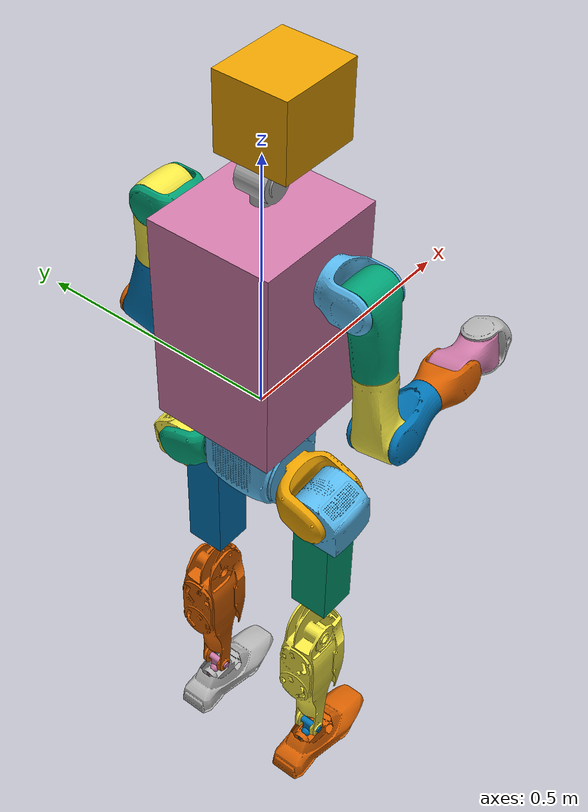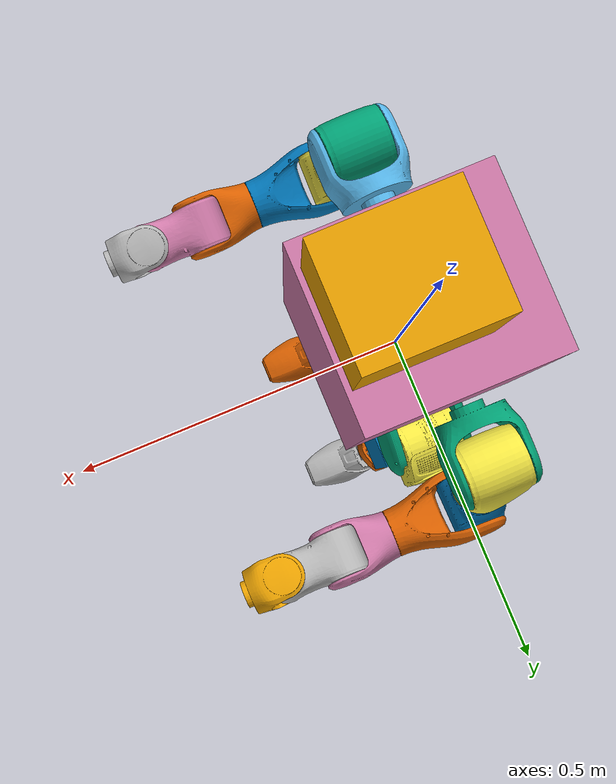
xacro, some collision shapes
<?xml version="1.0" encoding="utf-8"?>

<robot name="atom" xmlns:xacro="http://www.ros.org/wiki/xacro">

	<link name="base_link"/>
	<joint name="base_joint" type="fixed">
		<parent link="base_link"/>
		<child link="pelvis"/>
	</joint>

	<!-- 切换模式参数 -->
	<xacro:arg name="type" default="full" />

	<!-- 全身模式 -->
    <xacro:if value="${'$(arg type)' == 'full'}">
        <xacro:include filename="$(find dobot_atom_description)/xacro/full_body.xacro"/>
    </xacro:if>

    <!-- 上半身模式 -->
    <xacro:if value="${'$(arg type)' == 'upper'}">
        <xacro:include filename="$(find dobot_atom_description)/xacro/full_upper_body.xacro"/>
    </xacro:if>

	<!--xacro:include filename="$(find dobot_atom_description)/xacro/full_body.xacro"/-->

</robot>

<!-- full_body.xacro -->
<robot name="atom" xmlns:xacro="http://www.ros.org/wiki/xacro">
	<link name="pelvis">
		<inertial>
			<origin xyz="0.0006 0.0000 -0.0998"/>
			<mass value="6.5370"/>
			<inertia ixx="0.0344" ixy="0.0000" ixz="0.0001" iyy="0.0292" iyz="0.0000" izz="0.0214"/>
		</inertial>
		<visual>
			<geometry>
				<mesh filename="file://$(find dobot_atom_description)/meshes/body/pelvis.obj"/>
			</geometry>
		</visual>
	</link>

	<!-- Left Leg -->
	<xacro:include filename="$(find dobot_atom_description)/xacro/leg.xacro"/>
	<xacro:AtomLeg name="" direction="1" parent_link="pelvis"/>

	<!-- Right Leg -->
	<xacro:AtomLeg name="" direction="-1" parent_link="pelvis"/>

	<!-- Upper Body (Torso, Head, IMU) -->
	<xacro:include filename="$(find dobot_atom_description)/xacro/upper_body.xacro"/>
	<xacro:AtomUpperBody parent_link="pelvis" type="full"/>

	<!-- Left Arm -->
	<xacro:include filename="$(find dobot_atom_description)/xacro/arm.xacro"/>
	<xacro:AtomArm name="left_" direction="1" parent_link="torso_link"/>

	<!-- Right Arm -->
	<xacro:AtomArm name="right_" direction="-1" parent_link="torso_link"/>

</robot>

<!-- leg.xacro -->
<robot name="atom_leg" xmlns:xacro="http://www.ros.org/wiki/xacro">

	<xacro:macro name="AtomLeg" params="name direction:=1 parent_link">
		<xacro:property name="leg_side" value="${'l' if direction > 0 else 'r'}"/>

		<!-- Leg L1/R1 Link -->
		<link name="${name}leg_${leg_side}1_link">
			<inertial>
				<origin xyz="0.0011 ${direction*0.0370} -0.0046"/>
				<mass value="0.6084"/>
				<inertia ixx="0.0010" ixy="${-direction*0.0001}" ixz="0.0000" iyy="0.0015" iyz="${direction*0.0002}"
								 izz="0.0017"/>
			</inertial>
			<visual>
				<geometry>
					<mesh filename="file://$(find dobot_atom_description)/meshes/leg/link1.obj" scale="1 ${direction} 1"/>
				</geometry>
			</visual>
		</link>

		<joint name="${name}leg_${leg_side}1_joint" type="revolute">
			<origin xyz="0 ${direction*0.0745} -0.133"/>
			<parent link="${parent_link}"/>
			<child link="${name}leg_${leg_side}1_link"/>
			<axis xyz="0 1 0"/>
			<limit lower="-2.5656" upper="3.0194" effort="1000" velocity="100"/>
		</joint>

		<!-- Leg L2/R2 Link -->
		<link name="${name}leg_${leg_side}2_link">
			<inertial>
				<origin xyz="-0.006 ${-direction*0.0003} -0.0057"/>
				<mass value="2.267"/>
				<inertia ixx="0.0032" ixy="0.0000" ixz="0.0000" iyy="0.0033" iyz="${-direction*0.0001}" izz="0.0030"/>
			</inertial>
			<visual>
				<geometry>
					<mesh filename="file://$(find dobot_atom_description)/meshes/leg/link2.obj" scale="1 ${direction} 1"/>
				</geometry>
			</visual>
		</link>

		<joint name="${name}leg_${leg_side}2_joint" type="revolute">
			<origin xyz="0.00283008034419562 ${direction*0.0765} -0.0248392963919153" rpy="0 -0.113446401379624 0"/>
			<parent link="${name}leg_${leg_side}1_link"/>
			<child link="${name}leg_${leg_side}2_link"/>
			<axis xyz="1 0 0"/>
			<limit lower="${-0.2618 if direction > 0 else -1.6581}" upper="${1.6581 if direction > 0 else 0.2618}"
						 effort="1000" velocity="100"/>
		</joint>

		<!-- Leg L3/R3 Link -->
		<link name="${name}leg_${leg_side}3_link">
			<inertial>
				<origin xyz="-0.0023 ${direction*0.0113} -0.1214"/>
				<mass value="5.5530"/>
				<inertia ixx="0.0412" ixy="${-direction*0.0002}" ixz="-0.0023" iyy="0.0416" iyz="${direction*0.0012}"
								 izz="0.0117"/>
			</inertial>
			<visual>
				<geometry>
					<mesh filename="file://$(find dobot_atom_description)/meshes/leg/link3.obj" scale="1 ${direction} 1"/>
				</geometry>
			</visual>
			<collision>
				<origin xyz="0 0 -0.12" rpy="0 0.113446401379624 0"/>
				<geometry>
					<box size="0.08 0.08 0.24"/>
				</geometry>
			</collision>
		</link>

		<joint name="${name}leg_${leg_side}3_joint" type="revolute">
			<origin xyz="0 ${-direction*0.020} -0.065"/>
			<parent link="${name}leg_${leg_side}2_link"/>
			<child link="${name}leg_${leg_side}3_link"/>
			<axis xyz="0 0 1"/>
			<limit lower="-2.7925" upper="2.7925" effort="1000" velocity="${100 if direction > 0 else 20}"/>
		</joint>

		<!-- Leg L4/R4 Link -->
		<link name="${name}leg_${leg_side}4_link">
			<inertial>
				<origin xyz="-0.0125 ${-direction*0.0005} -0.1040"/>
				<mass value="3.1000"/>
				<inertia ixx="0.0189" ixy="0.0000" ixz="-0.0016" iyy="0.0189" iyz="${direction*0.0001}" izz="0.0028"/>
			</inertial>
			<visual>
				<geometry>
					<mesh filename="file://$(find dobot_atom_description)/meshes/leg/link4.obj" scale="1 ${direction} 1"/>
				</geometry>
			</visual>
			<collision>
				<origin xyz="0 0 -0.16" rpy="0 0.113446401379624 0"/>
				<geometry>
					<box size="0.08 0.08 0.32"/>
				</geometry>
			</collision>
		</link>

		<joint name="${name}leg_${leg_side}4_joint" type="revolute">
			<origin xyz="-0.0468661304999053 0 -0.3213387482501"/>
			<parent link="${name}leg_${leg_side}3_link"/>
			<child link="${name}leg_${leg_side}4_link"/>
			<axis xyz="0 1 0"/>
			<limit lower="0" upper="2.4871" effort="1000" velocity="100"/>
		</joint>

		<!-- Leg L5/R5 Link -->
		<link name="${name}leg_${leg_side}5_link">
			<inertial>
				<origin xyz="0.000091 0.000214 -0.013313"/>
				<mass value="0.1552"/>
				<inertia ixx="0.000042" ixy="0.0000" ixz="0.0000" iyy="0.000037" iyz="0.0000" izz="0.000023"/>
			</inertial>
			<visual>
				<geometry>
					<mesh filename="file://$(find dobot_atom_description)/meshes/leg/link5.obj"/>
				</geometry>
			</visual>
		</link>

		<joint name="${name}leg_${leg_side}5_joint" type="revolute">
			<origin xyz="-0.031961645478192 0 -0.333525790934264" rpy="0 0.113446401379621 0"/>
			<parent link="${name}leg_${leg_side}4_link"/>
			<child link="${name}leg_${leg_side}5_link"/>
			<axis xyz="0 1 0"/>
			<limit lower="-0.8727" upper="0.5236" effort="1000" velocity="${20 if direction > 0 else 100}"/>
		</joint>

		<!-- Leg L6/R6 Link -->
		<link name="${name}leg_${leg_side}6_link">
			<inertial>
				<origin xyz="0.0318 0.0000 -0.0352"/>
				<mass value="0.6943"/>
				<inertia ixx="0.0007" ixy="0.0000" ixz="0.0001" iyy="0.0032" iyz="0.0000" izz="0.0033"/>
			</inertial>
			<visual>
				<geometry>
					<mesh filename="file://$(find dobot_atom_description)/meshes/leg/link6.obj" scale="1 ${direction} 1"/>
				</geometry>
			</visual>
			<collision>
				<origin xyz="0.04 0 -0.056"/>
				<geometry>
					<box size="0.25 0.1 0.02"/>
				</geometry>
			</collision>
		</link>

		<joint name="${name}leg_${leg_side}6_joint" type="revolute">
			<origin xyz="0 0 -0.025"/>
			<parent link="${name}leg_${leg_side}5_link"/>
			<child link="${name}leg_${leg_side}6_link"/>
			<axis xyz="1 0 0"/>
			<limit lower="-0.48" upper="0.48" effort="1000" velocity="${20 if direction > 0 else 100}"/>
		</joint>

	</xacro:macro>

</robot>

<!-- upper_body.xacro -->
<robot name="Dobot_Atom" xmlns:xacro="http://www.ros.org/wiki/xacro">

	<xacro:macro name="AtomUpperBody" params="parent_link type">

		<link name="torso_link">
			<inertial>
				<origin xyz="-0.0155931 0 0.2199051"/>
				<mass value="14.0858"/>
				<inertia ixx="0.1671325" ixy="0.0000" ixz="-0.0005474" iyy="0.1806563" iyz="0.0000" izz="0.0672070"/>
			</inertial>
			<visual>
				<geometry>
					<mesh filename="file://$(find dobot_atom_description)/meshes/body/torso.obj"/>
				</geometry>
			</visual>
			<collision>
				<origin xyz="0 0 0.2"/>
				<geometry>
					<box size="0.26 0.24 0.4"/>
				</geometry>
			</collision>
		</link>

		<xacro:if value="${type == 'upper'}">
			<!-- upper 模式锁死躯干 -->
			<joint name="torso_joint" type="fixed">
				<parent link="${parent_link}"/>
				<child link="torso_link"/>
			</joint>
		</xacro:if>

		<xacro:if value="${type != 'upper'}">
		<!-- full 模式保持原来的可旋转关节 -->
			<joint name="torso_joint" type="revolute">
				<parent link="${parent_link}"/>
				<child link="torso_link"/>
				<axis xyz="0 0 1"/>
				<limit lower="-2.7925" upper="2.7925" effort="1000" velocity="100"/>
			</joint>
		</xacro:if>

		<link name="head_yaw_link">
			<inertial>
				<origin xyz="0.0000 -0.0027 0.0383"/>
				<mass value="0.4387"/>
				<inertia ixx="0.0003" ixy="0.0000" ixz="0.0000" iyy="0.0002" iyz="0.0000" izz="0.0002"/>
			</inertial>
			<visual>
				<geometry>
					<mesh filename="file://$(find dobot_atom_description)/meshes/body/head_yaw.obj"/>
				</geometry>
			</visual>
		</link>

		<joint name="head_yaw_joint" type="revolute">
			<origin xyz="0 0 0.4177"/>
			<parent link="torso_link"/>
			<child link="head_yaw_link"/>
			<axis xyz="0 0 1"/>
			<limit lower="-1.57" upper="1.57" effort="12" velocity="6.28"/>
		</joint>

		<link name="head_pitch_link">
			<inertial>
				<origin xyz="0.0337 0.0004 0.1204"/>
				<mass value="1.3341"/>
				<inertia ixx="0.0042" ixy="0.0000" ixz="0.0001" iyy="0.0070" iyz="0.0000" izz="0.0067"/>
			</inertial>
			<visual>
				<geometry>
					<mesh filename="file://$(find dobot_atom_description)/meshes/body/head_pitch.obj"/>
				</geometry>
			</visual>
			<collision>
				<origin xyz="0.05 0 0.1"/>
				<geometry>
					<box size="0.16 0.14 0.14"/>
				</geometry>
			</collision>
		</link>

		<joint name="head_pitch_joint" type="revolute">
			<origin xyz="0 0 0.041"/>
			<parent link="head_yaw_link"/>
			<child link="head_pitch_link"/>
			<axis xyz="0 1 0"/>
			<limit lower="-1.57" upper="0.6981" effort="12" velocity="6.28"/>
		</joint>

		<!-- imu -->
		<link name="imu_link">
		</link>
		<joint name="imu_joint" type="fixed">
			<origin xyz="0 0 -0.18"/>
			<parent link="torso_link"/>
			<child link="imu_link"/>
		</joint>

	</xacro:macro>

</robot>

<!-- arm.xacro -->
<robot name="atom_arm" xmlns:xacro="http://www.ros.org/wiki/xacro">

	<xacro:macro name="AtomArm" params="name direction:=1 parent_link">
		<xacro:property name="prefix" value="${name + '_' if name else ''}"/>

		<!-- Shoulder Pitch Link -->
		<link name="${prefix}shoulder_pitch_link">
			<inertial>
				<origin xyz="0.0044 ${direction*0.0368} 0.0000"/>
				<mass value="0.4473"/>
				<inertia ixx="0.0007" ixy="${direction*0.0001}" ixz="-0.0001" iyy="0.0008" iyz="0.0000" izz="0.0010"/>
			</inertial>
			<visual>
				<geometry>
					<mesh filename="file://$(find dobot_atom_description)/meshes/arm/link1.obj" scale="1 ${direction} 1"/>
				</geometry>
			</visual>
		</link>

		<joint name="${prefix}shoulder_pitch_joint" type="revolute">
			<origin xyz="0 ${direction*0.128} 0.333"/>
			<parent link="${parent_link}"/>
			<child link="${prefix}shoulder_pitch_link"/>
			<axis xyz="0 1 0"/>
			<limit lower="-2.97" upper="2.97" effort="56" velocity="2.62"/>
		</joint>

		<!-- Shoulder Roll Link -->
		<link name="${prefix}shoulder_roll_link">
			<inertial>
				<origin xyz="0.0124 ${direction*0.0009} -0.0545"/>
				<mass value="1.7940"/>
				<inertia ixx="0.0066" ixy="0.0000" ixz="0.0004" iyy="0.0067" iyz="0.0000" izz="0.0013"/>
			</inertial>
			<visual>
				<geometry>
					<mesh filename="file://$(find dobot_atom_description)/meshes/arm/link2.obj" scale="1 ${direction} 1"/>
				</geometry>
			</visual>

		</link>

		<joint name="${prefix}shoulder_roll_joint" type="revolute">
			<origin xyz="0 ${direction*0.078} 0" rpy="${direction*0.18} 0 0"/>
			<parent link="${prefix}shoulder_pitch_link"/>
			<child link="${prefix}shoulder_roll_link"/>
			<axis xyz="1 0 0"/>
			<limit lower="${-0.43 if direction > 0 else -3.14}" upper="${3.14 if direction > 0 else 0.43}" effort="36"
						 velocity="2.62"/>
		</joint>

		<!-- Shoulder Yaw Link -->
		<link name="${prefix}shoulder_yaw_link">
			<inertial>
				<origin xyz="-0.0014 ${direction*0.0066} -0.1179"/>
				<mass value="0.9798"/>
				<inertia ixx="0.0018" ixy="0.0000" ixz="-0.0001" iyy="0.0016" iyz="${-direction*0.0001}" izz="0.0008"/>
			</inertial>
			<visual>
				<geometry>
					<mesh filename="file://$(find dobot_atom_description)/meshes/arm/link3.obj"/>
				</geometry>
			</visual>
			<collision>
				<origin xyz="0 0 0"/>
				<geometry>
					<cylinder radius="0.04" length="0.20"/>
				</geometry>
			</collision>
		</link>

		<joint name="${prefix}shoulder_yaw_joint" type="revolute">
			<origin xyz="0 0 -0.135"/>
			<parent link="${prefix}shoulder_roll_link"/>
			<child link="${prefix}shoulder_yaw_link"/>
			<axis xyz="0 0 1"/>
			<limit lower="-2.97" upper="2.97" effort="36" velocity="2.62"/>
		</joint>

		<!-- Elbow Pitch Link -->
		<link name="${prefix}elbow_pitch_link">
			<inertial>
				<origin xyz="0.0903 ${direction*0.0016} -0.0003"/>
				<mass value="0.8548"/>
				<inertia ixx="0.0008" ixy="${-direction*0.0001}" ixz="0.0000" iyy="0.0025" iyz="${-direction*0.0000}"
								 izz="0.0028"/>
			</inertial>
			<visual>
				<geometry>
					<mesh filename="file://$(find dobot_atom_description)/meshes/arm/link4.obj"/>
				</geometry>
			</visual>
			<collision>
				<origin rpy="1.57079632679 0 0"/>
				<geometry>
					<cylinder radius="0.04" length="0.11"/>
				</geometry>
			</collision>
		</link>

		<joint name="${prefix}elbow_pitch_joint" type="revolute">
			<origin xyz="0.00044198773719138 0 -0.130000000000198"/>
			<parent link="${prefix}shoulder_yaw_link"/>
			<child link="${prefix}elbow_pitch_link"/>
			<axis xyz="0 1 0"/>
			<limit lower="-1.57" upper="2" effort="36" velocity="2.62"/>
		</joint>

		<!-- Elbow Roll Link -->
		<link name="${prefix}elbow_roll_link">
			<inertial>
				<origin xyz="0.0270 ${direction*0.0018} -0.0002"/>
				<mass value="0.2126"/>
				<inertia ixx="0.0003" ixy="0.0000" ixz="0.0000" iyy="0.0002" iyz="0.0000" izz="0.0003"/>
			</inertial>
			<visual>
				<geometry>
					<mesh filename="file://$(find dobot_atom_description)/meshes/arm/link5.obj"/>
				</geometry>
			</visual>
			<collision>
                <origin
				    xyz="-0.04 0 0"
				    rpy="0 1.57079632679 0"/>
                <geometry>
                    <cylinder radius="0.045" length="0.15"/>
                </geometry>
            </collision>
		</link>

		<joint name="${prefix}elbow_roll_joint" type="revolute">
			<origin xyz="0.1453 0 0"/>
			<parent link="${prefix}elbow_pitch_link"/>
			<child link="${prefix}elbow_roll_link"/>
			<axis xyz="1 0 0"/>
			<limit lower="-2.97" upper="2.97" effort="18.6" velocity="2.62"/>
		</joint>

		<!-- Wrist Pitch Link -->
		<link name="${prefix}wrist_pitch_link">
			<inertial>
				<origin xyz="0.0421 ${-direction*0.0042} -0.0038"/>
				<mass value="1.2573"/>
				<inertia ixx="0.0008" ixy="${direction*0.0002}" ixz="-0.0002" iyy="0.0029" iyz="0.0000" izz="0.0029"/>
			</inertial>
			<visual>
				<geometry>
					<mesh filename="file://$(find dobot_atom_description)/meshes/arm/link6.obj" scale="1 ${direction} 1"/>
				</geometry>
			</visual>
			<collision>
				<origin rpy="1.57079632679 0 0"/>
				<geometry>
					<cylinder radius="0.035" length="0.09"/>
				</geometry>
			</collision>
		</link>

		<joint name="${prefix}wrist_pitch_joint" type="revolute">
			<origin xyz="0.05345 0 0"/>
			<parent link="${prefix}elbow_roll_link"/>
			<child link="${prefix}wrist_pitch_link"/>
			<axis xyz="0 1 0"/>
			<limit lower="-1.57" upper="1.57" effort="18.6" velocity="2.62"/>
		</joint>

		<!-- Wrist Yaw Link -->
		<link name="${prefix}wrist_yaw_link">
			<inertial>
				<origin xyz="0.0290 ${direction*0.0004} 0.0010"/>
				<mass value="0.3340"/>
				<inertia ixx="0.0003" ixy="0.0000" ixz="0.0000" iyy="0.0004" iyz="${-direction*0.0000}" izz="0.0003"/>
			</inertial>
			<visual>
				<geometry>
					<mesh filename="file://$(find dobot_atom_description)/meshes/arm/link7.obj" scale="1 ${direction} 1"/>
				</geometry>
			</visual>
			<collision>
                <origin rpy="0 0 0"/>
                <geometry>
                    <cylinder radius="0.035" length="0.09"/>
                </geometry>
            </collision>
		</link>

		<joint name="${prefix}wrist_yaw_joint" type="revolute">
			<origin xyz="0.085 0 0"/>
			<parent link="${prefix}wrist_pitch_link"/>
			<child link="${prefix}wrist_yaw_link"/>
			<axis xyz="0 0 1"/>
			<limit lower="-1.57" upper="1.57" effort="18.6" velocity="2.62"/>
		</joint>

	</xacro:macro>

</robot>
